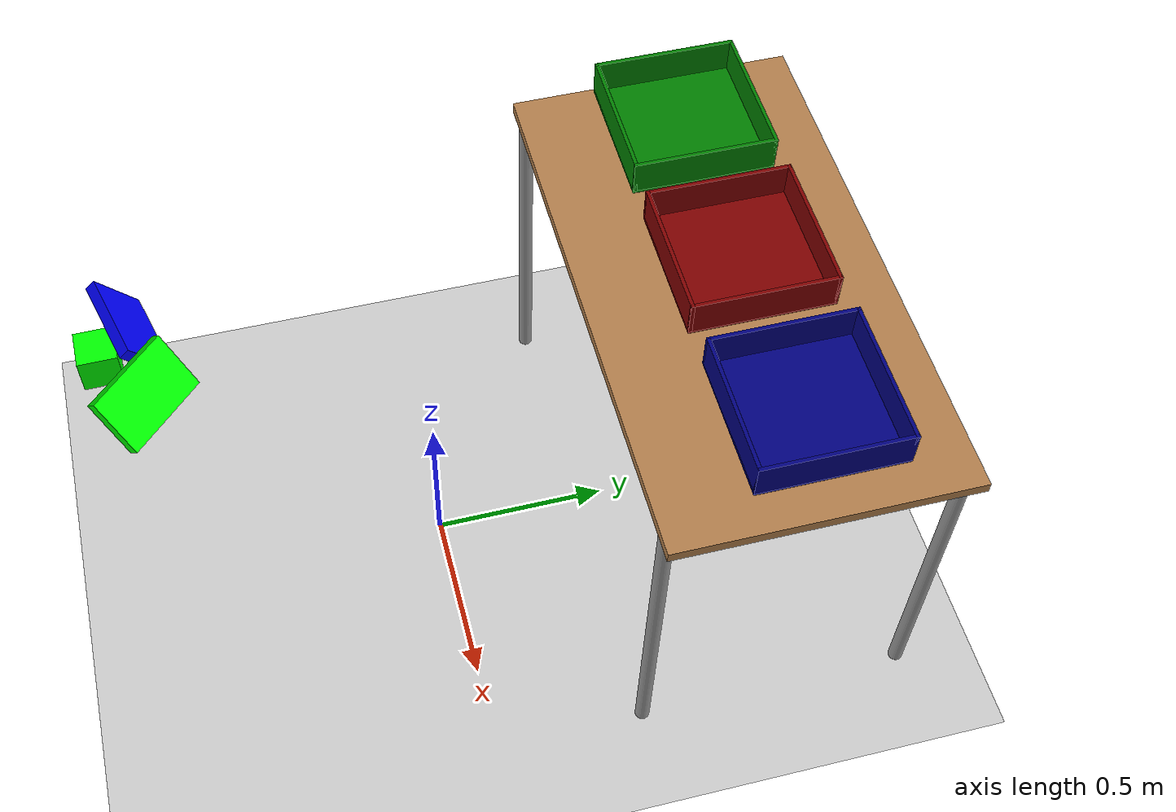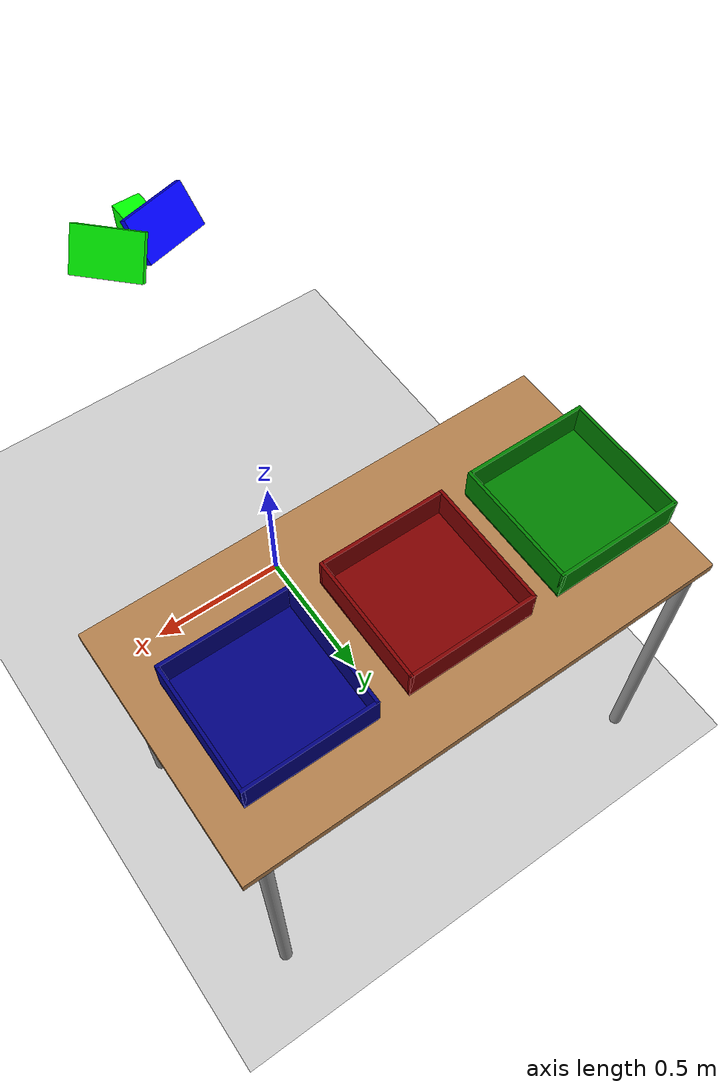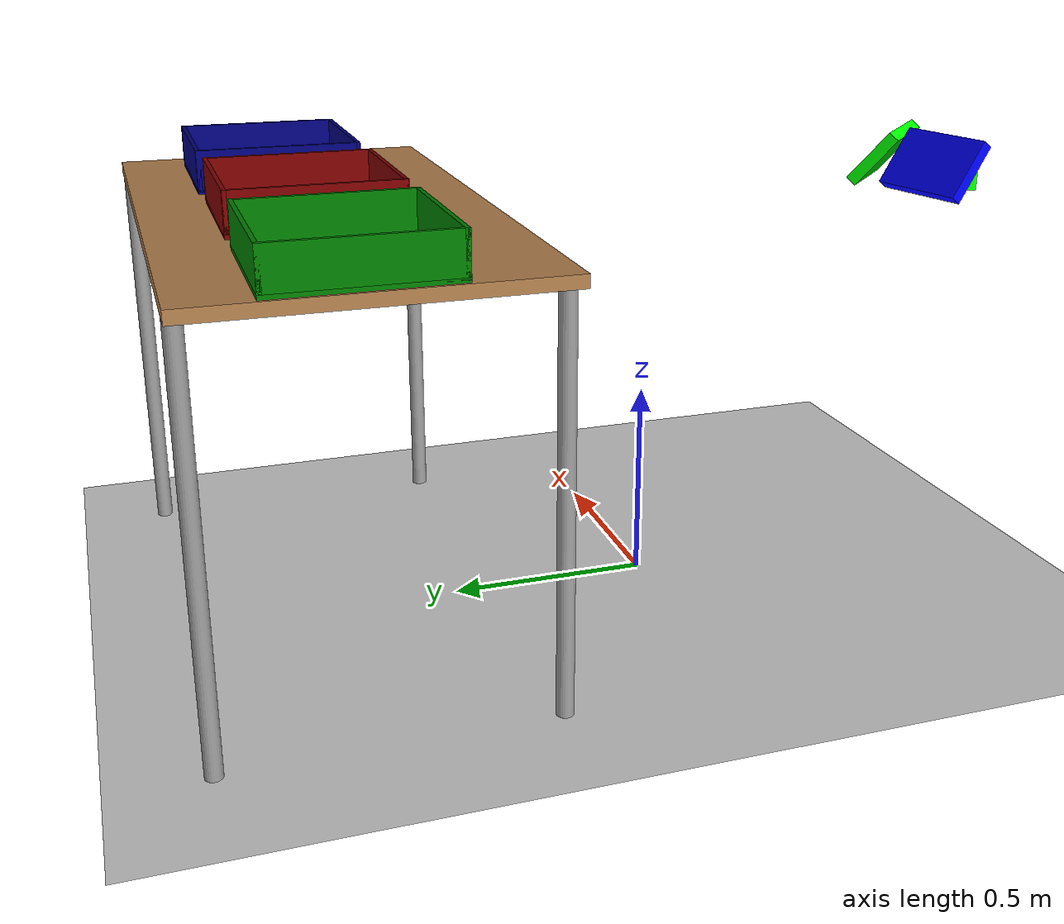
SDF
<sdf version="1.7">
 <world name="default">
  <model name="ground_plane">
   <static>1</static>
   <link name="link">
    <collision name="collision">
     <geometry><plane><normal>0 0 1</normal><size>100 100</size></plane></geometry>
     <surface><friction><ode><mu>100</mu><mu2>50</mu2></ode></friction></surface>
    </collision>
    <visual name="visual">
     <cast_shadows>0</cast_shadows>
     <geometry><plane><normal>0 0 1</normal><size>100 100</size></plane></geometry>
     <material>
      <script><uri>file://media/materials/scripts/gazebo.material</uri><name>Gazebo/Grey</name></script>
     </material>
    </visual>
   </link>
  </model>
  <model name="table">
   <static>1</static>
   <link name="link">
    <collision name="surface">
     <pose>0 0 1 0 -0 0</pose>
     <geometry><box><size>1.5 0.8 0.03</size></box></geometry>
     <surface>
      <friction><ode><mu>10</mu><mu2>5</mu2></ode></friction>
      <contact><ode><soft_cfm>0.0001</soft_cfm><soft_erp>0.4</soft_erp><kp>1e+06</kp><kd>10</kd></ode></contact>
     </surface>
    </collision>
    <visual name="visual1">
     <pose>0 0 1 0 -0 0</pose>
     <geometry><box><size>1.5 0.8 0.03</size></box></geometry>
     <material>
      <script><uri>file://media/materials/scripts/gazebo.material</uri><name>Gazebo/Wood</name></script>
     </material>
    </visual>
    <collision name="front_left_leg">
     <pose>0.68 0.38 0.5 0 -0 0</pose>
     <geometry><cylinder><radius>0.02</radius><length>1</length></cylinder></geometry>
    </collision>
    <visual name="front_left_leg">
     <pose>0.68 0.38 0.5 0 -0 0</pose>
     <geometry><cylinder><radius>0.02</radius><length>1</length></cylinder></geometry>
     <material>
      <script><uri>file://media/materials/scripts/gazebo.material</uri><name>Gazebo/Grey</name></script>
     </material>
    </visual>
    <collision name="front_right_leg">
     <pose>0.68 -0.38 0.5 0 -0 0</pose>
     <geometry><cylinder><radius>0.02</radius><length>1</length></cylinder></geometry>
    </collision>
    <visual name="front_right_leg">
     <pose>0.68 -0.38 0.5 0 -0 0</pose>
     <geometry><cylinder><radius>0.02</radius><length>1</length></cylinder></geometry>
     <material>
      <script><uri>file://media/materials/scripts/gazebo.material</uri><name>Gazebo/Grey</name></script>
     </material>
    </visual>
    <collision name="back_right_leg">
     <pose>-0.68 -0.38 0.5 0 -0 0</pose>
     <geometry><cylinder><radius>0.02</radius><length>1</length></cylinder></geometry>
    </collision>
    <visual name="back_right_leg">
     <pose>-0.68 -0.38 0.5 0 -0 0</pose>
     <geometry><cylinder><radius>0.02</radius><length>1</length></cylinder></geometry>
     <material>
      <script><uri>file://media/materials/scripts/gazebo.material</uri><name>Gazebo/Grey</name></script>
     </material>
    </visual>
    <collision name="back_left_leg">
     <pose>-0.68 0.38 0.5 0 -0 0</pose>
     <geometry><cylinder><radius>0.02</radius><length>1</length></cylinder></geometry>
    </collision>
    <visual name="back_left_leg">
     <pose>-0.68 0.38 0.5 0 -0 0</pose>
     <geometry><cylinder><radius>0.02</radius><length>1</length></cylinder></geometry>
     <material>
      <script><uri>file://media/materials/scripts/gazebo.material</uri><name>Gazebo/Grey</name></script>
     </material>
    </visual>
    <inertial>
     <inertia><ixx>1</ixx><ixy>0</ixy><ixz>0</ixz><iyy>1</iyy><iyz>0</iyz><izz>1</izz></inertia>
     <mass>50</mass>
    </inertial>
   </link>
   <pose>0.056083 0.801191 -1.2e-05 0 -0 2.5e-05</pose>
  </model>
  <model name="cube_g">
   <link name="link_2">
    <inertial>
     <mass>2</mass>
     <inertia>
      <ixx>0.00333333</ixx>
      <iyy>0.00333333</iyy>
      <izz>0.00333333</izz>
      <ixy>0</ixy>
      <ixz>0</ixz>
      <iyz>0</iyz>
     </inertia>
    </inertial>
    <visual name="visual">
     <geometry><box><size>0.1 0.1 0.1</size></box></geometry>
     <material>
      <lighting>1</lighting>
      <script><uri>file://media/materials/scripts/gazebo.material</uri><name>Gazebo/Grey</name></script>
      <ambient>0 1 0 1</ambient>
      <diffuse>0 1 0 1</diffuse>
      <specular>0 0 0 1</specular>
      <emissive>0 0 0 1</emissive>
      <shader type="vertex"><normal_map>__default__</normal_map></shader>
     </material>
    </visual>
    <collision name="collision">
     <geometry><box><size>0.1 0.1 0.1</size></box></geometry>
     <surface>
      <friction>
       <ode><mu>0.8</mu><mu2>0.8</mu2><fdir1>0 0 0</fdir1><slip1>0</slip1><slip2>0</slip2></ode>
       <torsional>
        <coefficient>1</coefficient>
        <patch_radius>0</patch_radius>
        <surface_radius>0</surface_radius>
        <use_patch_radius>1</use_patch_radius>
        <ode><slip>0</slip></ode>
       </torsional>
      </friction>
      <bounce><restitution_coefficient>0</restitution_coefficient><threshold>1e+06</threshold></bounce>
      <contact>
       <collide_without_contact>0</collide_without_contact>
       <collide_without_contact_bitmask>1</collide_without_contact_bitmask>
       <collide_bitmask>1</collide_bitmask>
       <ode>
        <soft_cfm>0.0001</soft_cfm>
        <soft_erp>0.4</soft_erp>
        <kp>1e+06</kp>
        <kd>10</kd>
        <max_vel>0.01</max_vel>
        <min_depth>0</min_depth>
       </ode>
      </contact>
     </surface>
    </collision>
   </link>
   <static>0</static>
   <allow_auto_disable>0</allow_auto_disable>
   <pose>-0.061082 -0.813113 1.03537 0.001107 -0.004189 0.012177</pose>
  </model>
  <model name="cuboid_g">
   <link name="link">
    <inertial>
     <mass>2</mass>
     <inertia><ixx>0.00442</ixx><iyy>0.0101</iyy><izz>0.0143</izz><ixy>0</ixy><ixz>0</ixz><iyz>0</iyz></inertia>
    </inertial>
    <visual name="visual">
     <geometry><box><size>0.245 0.16 0.03</size></box></geometry>
     <material><ambient>0 1 0 1</ambient><diffuse>0 1 0 1</diffuse><specular>0.1 0.1 0.1 1</specular></material>
    </visual>
    <collision name="collision">
     <geometry><box><size>0.245 0.16 0.03</size></box></geometry>
     <surface>
      <friction>
       <ode><mu>0.6</mu><mu2>0.6</mu2><fdir1>0 0 0</fdir1><slip1>0</slip1><slip2>0</slip2></ode>
       <torsional>
        <coefficient>1</coefficient>
        <patch_radius>0</patch_radius>
        <surface_radius>0</surface_radius>
        <use_patch_radius>1</use_patch_radius>
        <ode><slip>0</slip></ode>
       </torsional>
      </friction>
      <bounce><restitution_coefficient>0</restitution_coefficient><threshold>1e+06</threshold></bounce>
      <contact>
       <collide_without_contact>0</collide_without_contact>
       <collide_without_contact_bitmask>1</collide_without_contact_bitmask>
       <collide_bitmask>1</collide_bitmask>
       <ode>
        <soft_cfm>0.0001</soft_cfm>
        <soft_erp>0.4</soft_erp>
        <kp>1e+06</kp>
        <kd>10</kd>
        <max_vel>0.01</max_vel>
        <min_depth>0</min_depth>
       </ode>
      </contact>
     </surface>
    </collision>
   </link>
   <static>0</static>
   <allow_auto_disable>0</allow_auto_disable>
   <pose>0.092728 -0.712322 1.05724 -2.26761 0.002126 2.35506</pose>
  </model>
  <model name="cuboid_b">
   <link name="link">
    <inertial>
     <mass>2</mass>
     <inertia><ixx>0.00442</ixx><iyy>0.0101</iyy><izz>0.0143</izz><ixy>0</ixy><ixz>0</ixz><iyz>0</iyz></inertia>
    </inertial>
    <visual name="visual">
     <geometry><box><size>0.245 0.16 0.03</size></box></geometry>
     <material><ambient>0 0 1 1</ambient><diffuse>0 0 1 1</diffuse><specular>0.1 0.1 0.1 1</specular></material>
    </visual>
    <collision name="collision">
     <geometry><box><size>0.245 0.16 0.03</size></box></geometry>
     <surface>
      <friction>
       <ode><mu>0.6</mu><mu2>0.6</mu2><fdir1>0 0 0</fdir1><slip1>0</slip1><slip2>0</slip2></ode>
       <torsional>
        <coefficient>1</coefficient>
        <patch_radius>0</patch_radius>
        <surface_radius>0</surface_radius>
        <use_patch_radius>1</use_patch_radius>
        <ode><slip>0</slip></ode>
       </torsional>
      </friction>
      <bounce><restitution_coefficient>0</restitution_coefficient><threshold>1e+06</threshold></bounce>
      <contact>
       <collide_without_contact>0</collide_without_contact>
       <collide_without_contact_bitmask>1</collide_without_contact_bitmask>
       <collide_bitmask>1</collide_bitmask>
       <ode>
        <soft_cfm>0.0001</soft_cfm>
        <soft_erp>0.4</soft_erp>
        <kp>1e+06</kp>
        <kd>10</kd>
        <max_vel>0.01</max_vel>
        <min_depth>0</min_depth>
       </ode>
      </contact>
     </surface>
    </collision>
   </link>
   <static>0</static>
   <allow_auto_disable>0</allow_auto_disable>
   <pose>-0.118087 -0.726719 1.0589 0.946276 0.004308 -2.89098</pose>
  </model>
  <model name="tray_red">
   <static>1</static>
   <link name="link">
    <collision name="base_collision">
     <pose>0 0 0.01 0 -0 0</pose>
     <geometry><box><size>0.4 0.4 0.01</size></box></geometry>
     <surface><contact><ode><mu>50</mu><mu2>50</mu2></ode></contact></surface>
    </collision>
    <visual name="base_visual">
     <pose>0 0 0.01 0 -0 0</pose>
     <geometry><box><size>0.4 0.4 0.01</size></box></geometry>
     <material>
      <ambient>1 0 0 1</ambient>
      <diffuse>0.5 0 0 1</diffuse>
      <specular>0 0 0 1</specular>
      <emissive>0 0 0 1</emissive>
      <shininess>100</shininess>
     </material>
    </visual>
    <collision name="front_collision">
     <pose>0 0.195 0.06 0 -0 0</pose>
     <geometry><box><size>0.4 0.01 0.1</size></box></geometry>
    </collision>
    <visual name="front_visual">
     <pose>0 0.195 0.06 0 -0 0</pose>
     <geometry><box><size>0.4 0.01 0.1</size></box></geometry>
     <material>
      <ambient>1 0 0 1</ambient>
      <diffuse>0.5 0 0 1</diffuse>
      <specular>0 0 0 1</specular>
      <emissive>0 0 0 1</emissive>
     </material>
    </visual>
    <collision name="back_collision">
     <pose>0 -0.195 0.06 0 -0 0</pose>
     <geometry><box><size>0.4 0.01 0.1</size></box></geometry>
    </collision>
    <visual name="back_visual">
     <pose>0 -0.195 0.06 0 -0 0</pose>
     <geometry><box><size>0.4 0.01 0.1</size></box></geometry>
     <material>
      <ambient>1 0 0 1</ambient>
      <diffuse>0.5 0 0 1</diffuse>
      <specular>0 0 0 1</specular>
      <emissive>0 0 0 1</emissive>
     </material>
    </visual>
    <collision name="left_collision">
     <pose>0.195 0 0.06 0 -0 0</pose>
     <geometry><box><size>0.01 0.4 0.1</size></box></geometry>
    </collision>
    <visual name="left_visual">
     <pose>0.195 0 0.06 0 -0 0</pose>
     <geometry><box><size>0.01 0.4 0.1</size></box></geometry>
     <material>
      <ambient>1 0 0 1</ambient>
      <diffuse>0.5 0 0 1</diffuse>
      <specular>0 0 0 1</specular>
      <emissive>0 0 0 1</emissive>
     </material>
    </visual>
    <collision name="right_collision">
     <pose>-0.195 0 0.06 0 -0 0</pose>
     <geometry><box><size>0.01 0.4 0.1</size></box></geometry>
    </collision>
    <visual name="right_visual">
     <pose>-0.195 0 0.06 0 -0 0</pose>
     <geometry><box><size>0.01 0.4 0.1</size></box></geometry>
     <material>
      <ambient>1 0 0 1</ambient>
      <diffuse>0.5 0 0 1</diffuse>
      <specular>0 0 0 1</specular>
      <emissive>0 0 0 1</emissive>
     </material>
    </visual>
    <inertial>
     <inertia><ixx>1</ixx><ixy>0</ixy><ixz>0</ixz><iyy>1</iyy><iyz>0</iyz><izz>1</izz></inertia>
     <mass>1</mass>
    </inertial>
   </link>
   <pose>0.003367 0.836815 1.00999 0 -0 0</pose>
  </model>
  <model name="tray_green">
   <static>1</static>
   <link name="link">
    <collision name="base_collision">
     <pose>0 0 0.01 0 -0 0</pose>
     <geometry><box><size>0.4 0.4 0.01</size></box></geometry>
     <surface><contact><ode><mu>50</mu><mu2>50</mu2></ode></contact></surface>
    </collision>
    <visual name="base_visual">
     <pose>0 0 0.01 0 -0 0</pose>
     <geometry><box><size>0.4 0.4 0.01</size></box></geometry>
     <material><ambient>0 1 0 1</ambient><diffuse>0 0.5 0 1</diffuse></material>
    </visual>
    <collision name="front_collision">
     <pose>0 0.195 0.06 0 -0 0</pose>
     <geometry><box><size>0.4 0.01 0.1</size></box></geometry>
    </collision>
    <visual name="front_visual">
     <pose>0 0.195 0.06 0 -0 0</pose>
     <geometry><box><size>0.4 0.01 0.1</size></box></geometry>
     <material><ambient>0 1 0 1</ambient><diffuse>0 0.5 0 1</diffuse></material>
    </visual>
    <collision name="back_collision">
     <pose>0 -0.195 0.06 0 -0 0</pose>
     <geometry><box><size>0.4 0.01 0.1</size></box></geometry>
    </collision>
    <visual name="back_visual">
     <pose>0 -0.195 0.06 0 -0 0</pose>
     <geometry><box><size>0.4 0.01 0.1</size></box></geometry>
     <material><ambient>0 1 0 1</ambient><diffuse>0 0.5 0 1</diffuse></material>
    </visual>
    <collision name="left_collision">
     <pose>0.195 0 0.06 0 -0 0</pose>
     <geometry><box><size>0.01 0.4 0.1</size></box></geometry>
    </collision>
    <visual name="left_visual">
     <pose>0.195 0 0.06 0 -0 0</pose>
     <geometry><box><size>0.01 0.4 0.1</size></box></geometry>
     <material><ambient>0 1 0 1</ambient><diffuse>0 0.5 0 1</diffuse></material>
    </visual>
    <collision name="right_collision">
     <pose>-0.195 0 0.06 0 -0 0</pose>
     <geometry><box><size>0.01 0.4 0.1</size></box></geometry>
    </collision>
    <visual name="right_visual">
     <pose>-0.195 0 0.06 0 -0 0</pose>
     <geometry><box><size>0.01 0.4 0.1</size></box></geometry>
     <material><ambient>0 1 0 1</ambient><diffuse>0 0.5 0 1</diffuse></material>
    </visual>
    <inertial>
     <inertia><ixx>1</ixx><ixy>0</ixy><ixz>0</ixz><iyy>1</iyy><iyz>0</iyz><izz>1</izz></inertia>
     <mass>1</mass>
    </inertial>
   </link>
   <pose>-0.487214 0.834657 1.00999 0 -0 0</pose>
  </model>
  <model name="tray_blue">
   <static>1</static>
   <link name="link">
    <collision name="base_collision">
     <pose>0 0 0.01 0 -0 0</pose>
     <geometry><box><size>0.4 0.4 0.01</size></box></geometry>
     <surface><contact><ode><mu>50</mu><mu2>50</mu2></ode></contact></surface>
    </collision>
    <visual name="base_visual">
     <pose>0 0 0.01 0 -0 0</pose>
     <geometry><box><size>0.4 0.4 0.01</size></box></geometry>
     <material><ambient>0 0 1 1</ambient><diffuse>0 0 0.5 1</diffuse></material>
    </visual>
    <collision name="front_collision">
     <pose>0 0.195 0.06 0 -0 0</pose>
     <geometry><box><size>0.4 0.01 0.1</size></box></geometry>
    </collision>
    <visual name="front_visual">
     <pose>0 0.195 0.06 0 -0 0</pose>
     <geometry><box><size>0.4 0.01 0.1</size></box></geometry>
     <material><ambient>0 0 1 1</ambient><diffuse>0 0 0.5 1</diffuse></material>
    </visual>
    <collision name="back_collision">
     <pose>0 -0.195 0.06 0 -0 0</pose>
     <geometry><box><size>0.4 0.01 0.1</size></box></geometry>
    </collision>
    <visual name="back_visual">
     <pose>0 -0.195 0.06 0 -0 0</pose>
     <geometry><box><size>0.4 0.01 0.1</size></box></geometry>
     <material><ambient>0 0 1 1</ambient><diffuse>0 0 0.5 1</diffuse></material>
    </visual>
    <collision name="left_collision">
     <pose>0.195 0 0.06 0 -0 0</pose>
     <geometry><box><size>0.01 0.4 0.1</size></box></geometry>
    </collision>
    <visual name="left_visual">
     <pose>0.195 0 0.06 0 -0 0</pose>
     <geometry><box><size>0.01 0.4 0.1</size></box></geometry>
     <material><ambient>0 0 1 1</ambient><diffuse>0 0 0.5 1</diffuse></material>
    </visual>
    <collision name="right_collision">
     <pose>-0.195 0 0.06 0 -0 0</pose>
     <geometry><box><size>0.01 0.4 0.1</size></box></geometry>
    </collision>
    <visual name="right_visual">
     <pose>-0.195 0 0.06 0 -0 0</pose>
     <geometry><box><size>0.01 0.4 0.1</size></box></geometry>
     <material><ambient>0 0 1 1</ambient><diffuse>0 0 0.5 1</diffuse></material>
    </visual>
    <inertial>
     <inertia><ixx>1</ixx><ixy>0</ixy><ixz>0</ixz><iyy>1</iyy><iyz>0</iyz><izz>1</izz></inertia>
     <mass>1</mass>
    </inertial>
   </link>
   <pose>0.500589 0.844197 1.00999 0 -0 0</pose>
  </model>
 </world>
</sdf>
